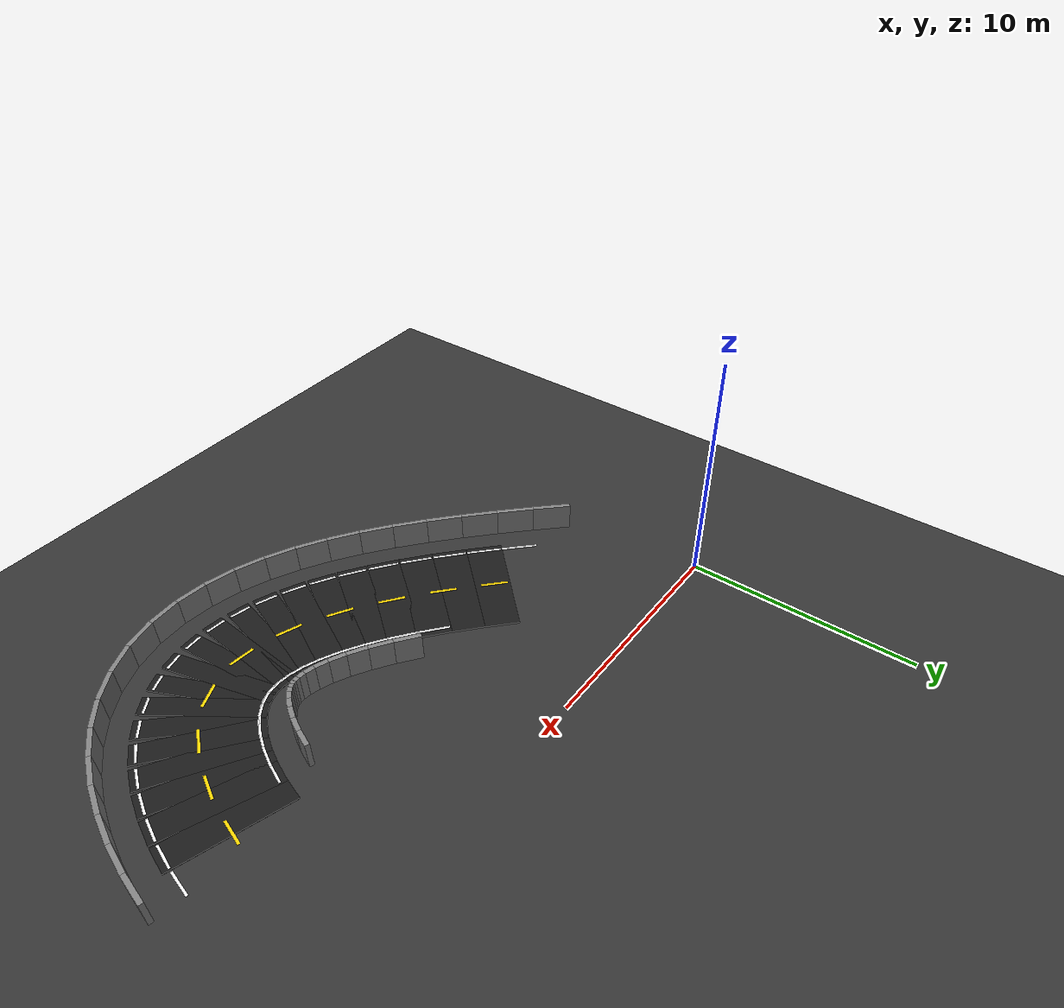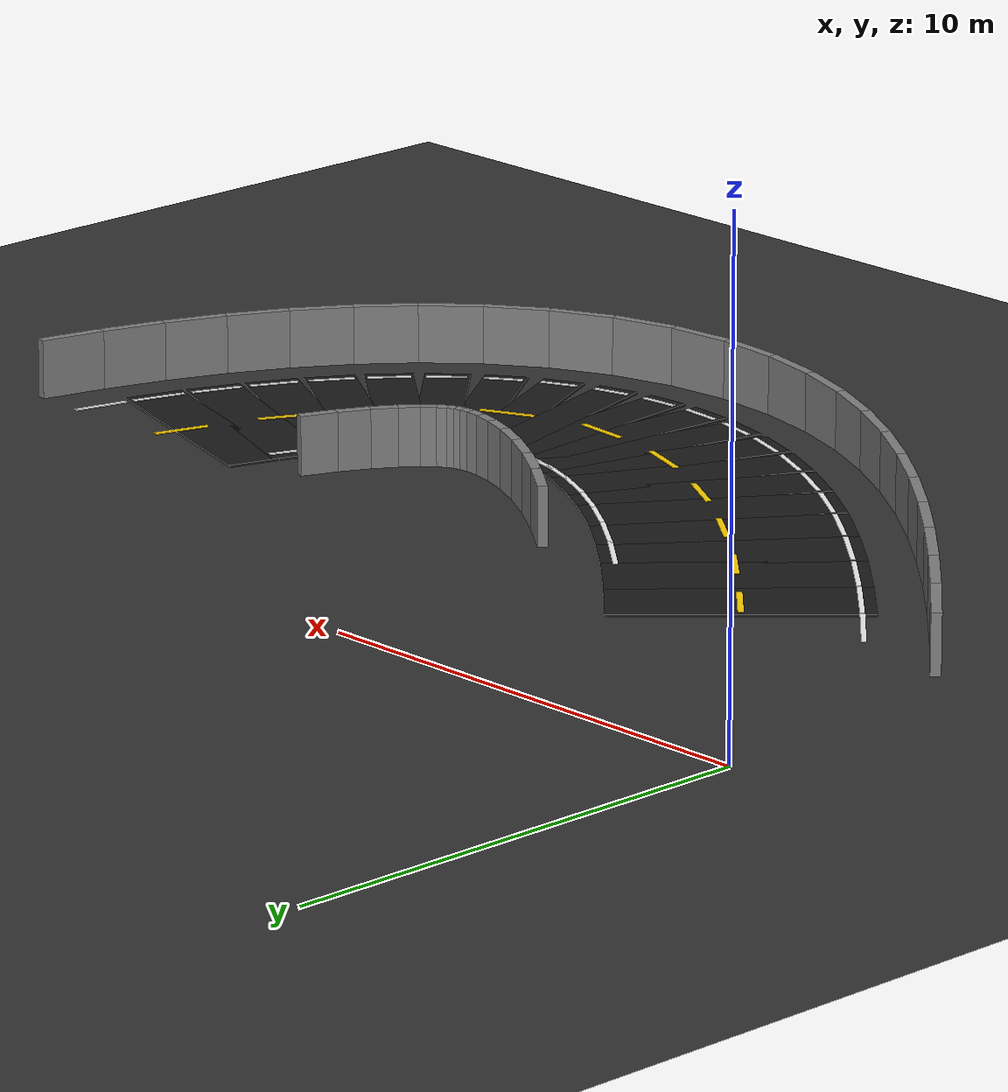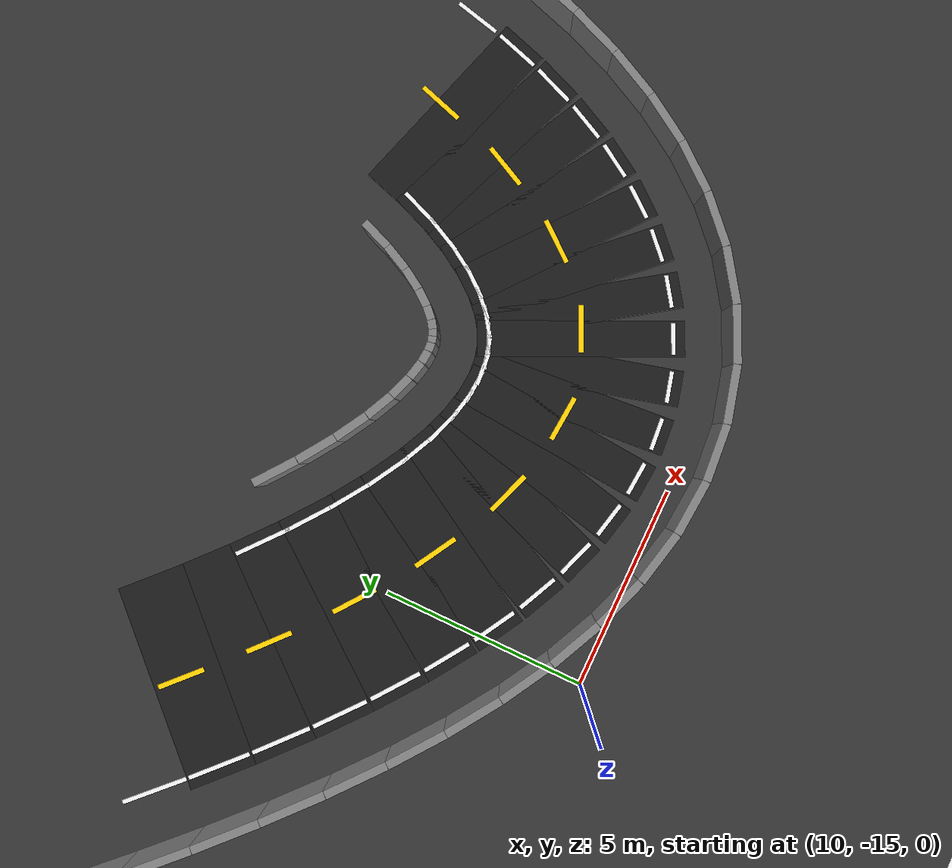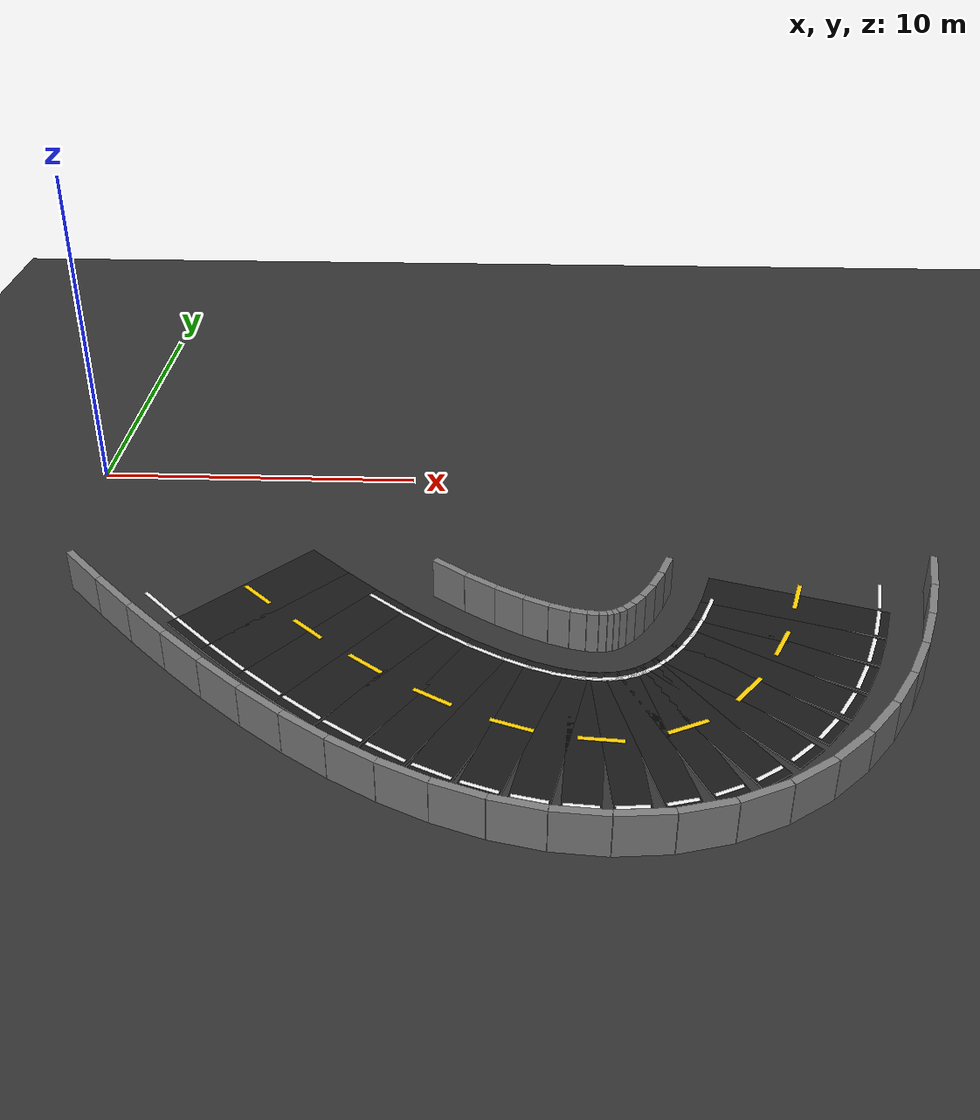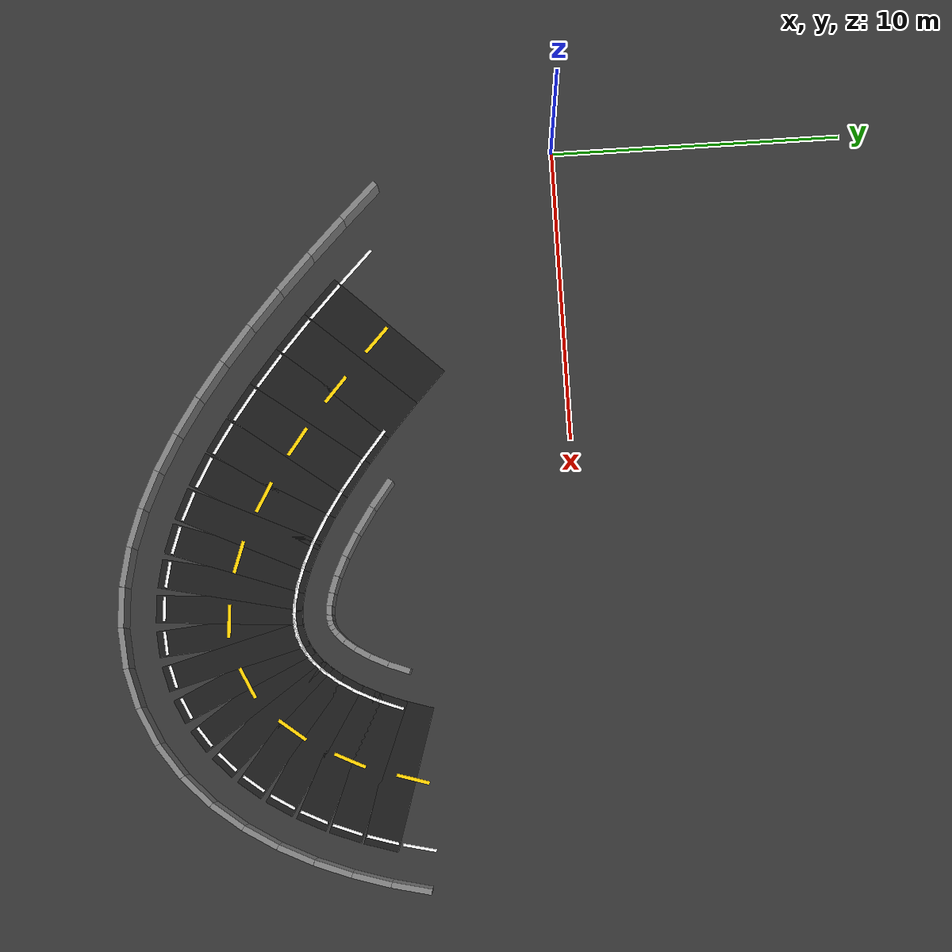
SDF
<sdf version="1.6">
 <world name="adas_figure8_circuit">
  <model name="ground">
   <static>true</static>
   <link name="link">
    <collision name="collision">
     <geometry><plane><normal>0 0 1</normal><size>80.0 80.0</size></plane></geometry>
    </collision>
    <visual name="visual">
     <geometry><plane><normal>0 0 1</normal><size>80.0 80.0</size></plane></geometry>
     <material><ambient>0.16 0.16 0.16 1</ambient><diffuse>0.20 0.20 0.20 1</diffuse></material>
    </visual>
   </link>
  </model>
  <model name="road_035">
   <static>true</static>
   <pose>21.0868 -6.5267 0.025 0 0 -1.871890</pose>
   <link name="link">
    <collision name="collision"><geometry><box><size>1.2030 5.000 0.05</size></box></geometry></collision>
    <visual name="visual">
     <geometry><box><size>1.2030 5.000 0.05</size></box></geometry>
     <material><ambient>0.07 0.07 0.07 1</ambient><diffuse>0.10 0.10 0.10 1</diffuse></material>
    </visual>
   </link>
  </model>
  <model name="road_036">
   <static>true</static>
   <pose>20.7310 -7.5415 0.025 0 0 -1.946007</pose>
   <link name="link">
    <collision name="collision"><geometry><box><size>1.1491 5.000 0.05</size></box></geometry></collision>
    <visual name="visual">
     <geometry><box><size>1.1491 5.000 0.05</size></box></geometry>
     <material><ambient>0.07 0.07 0.07 1</ambient><diffuse>0.10 0.10 0.10 1</diffuse></material>
    </visual>
   </link>
  </model>
  <model name="road_037">
   <static>true</static>
   <pose>20.3184 -8.4737 0.025 0 0 -2.031453</pose>
   <link name="link">
    <collision name="collision"><geometry><box><size>1.0915 5.000 0.05</size></box></geometry></collision>
    <visual name="visual">
     <geometry><box><size>1.0915 5.000 0.05</size></box></geometry>
     <material><ambient>0.07 0.07 0.07 1</ambient><diffuse>0.10 0.10 0.10 1</diffuse></material>
    </visual>
   </link>
  </model>
  <model name="road_038">
   <static>true</static>
   <pose>19.8501 -9.3130 0.025 0 0 -2.131045</pose>
   <link name="link">
    <collision name="collision"><geometry><box><size>1.0331 5.000 0.05</size></box></geometry></collision>
    <visual name="visual">
     <geometry><box><size>1.0331 5.000 0.05</size></box></geometry>
     <material><ambient>0.07 0.07 0.07 1</ambient><diffuse>0.10 0.10 0.10 1</diffuse></material>
    </visual>
   </link>
  </model>
  <model name="road_039">
   <static>true</static>
   <pose>19.3274 -10.0503 0.025 0 0 -2.247587</pose>
   <link name="link">
    <collision name="collision"><geometry><box><size>0.9775 5.000 0.05</size></box></geometry></collision>
    <visual name="visual">
     <geometry><box><size>0.9775 5.000 0.05</size></box></geometry>
     <material><ambient>0.07 0.07 0.07 1</ambient><diffuse>0.10 0.10 0.10 1</diffuse></material>
    </visual>
   </link>
  </model>
  <model name="road_040">
   <static>true</static>
   <pose>18.7517 -10.6774 0.025 0 0 -2.383120</pose>
   <link name="link">
    <collision name="collision"><geometry><box><size>0.9291 5.000 0.05</size></box></geometry></collision>
    <visual name="visual">
     <geometry><box><size>0.9291 5.000 0.05</size></box></geometry>
     <material><ambient>0.07 0.07 0.07 1</ambient><diffuse>0.10 0.10 0.10 1</diffuse></material>
    </visual>
   </link>
  </model>
  <model name="road_041">
   <static>true</static>
   <pose>18.1246 -11.1876 0.025 0 0 -2.537619</pose>
   <link name="link">
    <collision name="collision"><geometry><box><size>0.8926 5.000 0.05</size></box></geometry></collision>
    <visual name="visual">
     <geometry><box><size>0.8926 5.000 0.05</size></box></geometry>
     <material><ambient>0.07 0.07 0.07 1</ambient><diffuse>0.10 0.10 0.10 1</diffuse></material>
    </visual>
   </link>
  </model>
  <model name="road_042">
   <static>true</static>
   <pose>17.4478 -11.5752 0.025 0 0 -2.707447</pose>
   <link name="link">
    <collision name="collision"><geometry><box><size>0.8729 5.000 0.05</size></box></geometry></collision>
    <visual name="visual">
     <geometry><box><size>0.8729 5.000 0.05</size></box></geometry>
     <material><ambient>0.07 0.07 0.07 1</ambient><diffuse>0.10 0.10 0.10 1</diffuse></material>
    </visual>
   </link>
  </model>
  <model name="road_043">
   <static>true</static>
   <pose>16.7232 -11.8360 0.025 0 0 -2.884716</pose>
   <link name="link">
    <collision name="collision"><geometry><box><size>0.8734 5.000 0.05</size></box></geometry></collision>
    <visual name="visual">
     <geometry><box><size>0.8734 5.000 0.05</size></box></geometry>
     <material><ambient>0.07 0.07 0.07 1</ambient><diffuse>0.10 0.10 0.10 1</diffuse></material>
    </visual>
   </link>
  </model>
  <model name="road_044">
   <static>true</static>
   <pose>15.9528 -11.9671 0.025 0 0 -3.058868</pose>
   <link name="link">
    <collision name="collision"><geometry><box><size>0.8956 5.000 0.05</size></box></geometry></collision>
    <visual name="visual">
     <geometry><box><size>0.8956 5.000 0.05</size></box></geometry>
     <material><ambient>0.07 0.07 0.07 1</ambient><diffuse>0.10 0.10 0.10 1</diffuse></material>
    </visual>
   </link>
  </model>
  <model name="road_045">
   <static>true</static>
   <pose>15.1386 -11.9671 0.025 0 0 3.063072</pose>
   <link name="link">
    <collision name="collision"><geometry><box><size>0.9381 5.000 0.05</size></box></geometry></collision>
    <visual name="visual">
     <geometry><box><size>0.9381 5.000 0.05</size></box></geometry>
     <material><ambient>0.07 0.07 0.07 1</ambient><diffuse>0.10 0.10 0.10 1</diffuse></material>
    </visual>
   </link>
  </model>
  <model name="road_046">
   <static>true</static>
   <pose>14.2830 -11.8360 0.025 0 0 2.920897</pose>
   <link name="link">
    <collision name="collision"><geometry><box><size>0.9976 5.000 0.05</size></box></geometry></collision>
    <visual name="visual">
     <geometry><box><size>0.9976 5.000 0.05</size></box></geometry>
     <material><ambient>0.07 0.07 0.07 1</ambient><diffuse>0.10 0.10 0.10 1</diffuse></material>
    </visual>
   </link>
  </model>
  <model name="road_047">
   <static>true</static>
   <pose>13.3882 -11.5752 0.025 0 0 2.799787</pose>
   <link name="link">
    <collision name="collision"><geometry><box><size>1.0699 5.000 0.05</size></box></geometry></collision>
    <visual name="visual">
     <geometry><box><size>1.0699 5.000 0.05</size></box></geometry>
     <material><ambient>0.07 0.07 0.07 1</ambient><diffuse>0.10 0.10 0.10 1</diffuse></material>
    </visual>
   </link>
  </model>
  <model name="road_048">
   <static>true</static>
   <pose>12.4567 -11.1876 0.025 0 0 2.698785</pose>
   <link name="link">
    <collision name="collision"><geometry><box><size>1.1505 5.000 0.05</size></box></geometry></collision>
    <visual name="visual">
     <geometry><box><size>1.1505 5.000 0.05</size></box></geometry>
     <material><ambient>0.07 0.07 0.07 1</ambient><diffuse>0.10 0.10 0.10 1</diffuse></material>
    </visual>
   </link>
  </model>
  <model name="road_049">
   <static>true</static>
   <pose>11.4910 -10.6774 0.025 0 0 2.615516</pose>
   <link name="link">
    <collision name="collision"><geometry><box><size>1.2356 5.000 0.05</size></box></geometry></collision>
    <visual name="visual">
     <geometry><box><size>1.2356 5.000 0.05</size></box></geometry>
     <material><ambient>0.07 0.07 0.07 1</ambient><diffuse>0.10 0.10 0.10 1</diffuse></material>
    </visual>
   </link>
  </model>
  <model name="road_050">
   <static>true</static>
   <pose>10.4939 -10.0503 0.025 0 0 2.547260</pose>
   <link name="link">
    <collision name="collision"><geometry><box><size>1.3217 5.000 0.05</size></box></geometry></collision>
    <visual name="visual">
     <geometry><box><size>1.3217 5.000 0.05</size></box></geometry>
     <material><ambient>0.07 0.07 0.07 1</ambient><diffuse>0.10 0.10 0.10 1</diffuse></material>
    </visual>
   </link>
  </model>
  <model name="road_051">
   <static>true</static>
   <pose>9.4680 -9.3130 0.025 0 0 2.491490</pose>
   <link name="link">
    <collision name="collision"><geometry><box><size>1.4060 5.000 0.05</size></box></geometry></collision>
    <visual name="visual">
     <geometry><box><size>1.4060 5.000 0.05</size></box></geometry>
     <material><ambient>0.07 0.07 0.07 1</ambient><diffuse>0.10 0.10 0.10 1</diffuse></material>
    </visual>
   </link>
  </model>
  <model name="road_052">
   <static>true</static>
   <pose>8.4162 -8.4737 0.025 0 0 2.446072</pose>
   <link name="link">
    <collision name="collision"><geometry><box><size>1.4861 5.000 0.05</size></box></geometry></collision>
    <visual name="visual">
     <geometry><box><size>1.4861 5.000 0.05</size></box></geometry>
     <material><ambient>0.07 0.07 0.07 1</ambient><diffuse>0.10 0.10 0.10 1</diffuse></material>
    </visual>
   </link>
  </model>
  <model name="road_053">
   <static>true</static>
   <pose>7.3412 -7.5415 0.025 0 0 2.409289</pose>
   <link name="link">
    <collision name="collision"><geometry><box><size>1.5600 5.000 0.05</size></box></geometry></collision>
    <visual name="visual">
     <geometry><box><size>1.5600 5.000 0.05</size></box></geometry>
     <material><ambient>0.07 0.07 0.07 1</ambient><diffuse>0.10 0.10 0.10 1</diffuse></material>
    </visual>
   </link>
  </model>
  <model name="road_054">
   <static>true</static>
   <pose>6.2462 -6.5267 0.025 0 0 2.379794</pose>
   <link name="link">
    <collision name="collision"><geometry><box><size>1.6262 5.000 0.05</size></box></geometry></collision>
    <visual name="visual">
     <geometry><box><size>1.6262 5.000 0.05</size></box></geometry>
     <material><ambient>0.07 0.07 0.07 1</ambient><diffuse>0.10 0.10 0.10 1</diffuse></material>
    </visual>
   </link>
  </model>
  <model name="center_dash_018">
   <static>true</static>
   <pose>21.2339 -6.0532 0.058 0 0 -1.871890</pose>
   <link name="link">
    <visual name="visual">
     <geometry><box><size>1.150 0.12 0.02</size></box></geometry>
     <material><ambient>1 0.82 0 1</ambient><diffuse>1 0.82 0 1</diffuse></material>
    </visual>
   </link>
  </model>
  <model name="center_dash_019">
   <static>true</static>
   <pose>20.4816 -8.1448 0.058 0 0 -2.031453</pose>
   <link name="link">
    <visual name="visual">
     <geometry><box><size>1.150 0.12 0.02</size></box></geometry>
     <material><ambient>1 0.82 0 1</ambient><diffuse>1 0.82 0 1</diffuse></material>
    </visual>
   </link>
  </model>
  <model name="center_dash_020">
   <static>true</static>
   <pose>19.3334 -10.0427 0.058 0 0 -2.247587</pose>
   <link name="link">
    <visual name="visual">
     <geometry><box><size>1.150 0.12 0.02</size></box></geometry>
     <material><ambient>1 0.82 0 1</ambient><diffuse>1 0.82 0 1</diffuse></material>
    </visual>
   </link>
  </model>
  <model name="center_dash_021">
   <static>true</static>
   <pose>17.6577 -11.4779 0.058 0 0 -2.707447</pose>
   <link name="link">
    <visual name="visual">
     <geometry><box><size>1.150 0.12 0.02</size></box></geometry>
     <material><ambient>1 0.82 0 1</ambient><diffuse>1 0.82 0 1</diffuse></material>
    </visual>
   </link>
  </model>
  <model name="center_dash_022">
   <static>true</static>
   <pose>15.5181 -11.9970 0.058 0 0 3.063072</pose>
   <link name="link">
    <visual name="visual">
     <geometry><box><size>1.150 0.12 0.02</size></box></geometry>
     <material><ambient>1 0.82 0 1</ambient><diffuse>1 0.82 0 1</diffuse></material>
    </visual>
   </link>
  </model>
  <model name="center_dash_023">
   <static>true</static>
   <pose>13.3478 -11.5609 0.058 0 0 2.799787</pose>
   <link name="link">
    <visual name="visual">
     <geometry><box><size>1.150 0.12 0.02</size></box></geometry>
     <material><ambient>1 0.82 0 1</ambient><diffuse>1 0.82 0 1</diffuse></material>
    </visual>
   </link>
  </model>
  <model name="center_dash_024">
   <static>true</static>
   <pose>11.3486 -10.5947 0.058 0 0 2.615516</pose>
   <link name="link">
    <visual name="visual">
     <geometry><box><size>1.150 0.12 0.02</size></box></geometry>
     <material><ambient>1 0.82 0 1</ambient><diffuse>1 0.82 0 1</diffuse></material>
    </visual>
   </link>
  </model>
  <model name="center_dash_025">
   <static>true</static>
   <pose>9.5099 -9.3449 0.058 0 0 2.491490</pose>
   <link name="link">
    <visual name="visual">
     <geometry><box><size>1.150 0.12 0.02</size></box></geometry>
     <material><ambient>1 0.82 0 1</ambient><diffuse>1 0.82 0 1</diffuse></material>
    </visual>
   </link>
  </model>
  <model name="center_dash_026">
   <static>true</static>
   <pose>7.7849 -7.9404 0.058 0 0 2.409289</pose>
   <link name="link">
    <visual name="visual">
     <geometry><box><size>1.150 0.12 0.02</size></box></geometry>
     <material><ambient>1 0.82 0 1</ambient><diffuse>1 0.82 0 1</diffuse></material>
    </visual>
   </link>
  </model>
  <model name="center_dash_027">
   <static>true</static>
   <pose>6.1482 -6.4333 0.058 0 0 2.379794</pose>
   <link name="link">
    <visual name="visual">
     <geometry><box><size>1.150 0.12 0.02</size></box></geometry>
     <material><ambient>1 0.82 0 1</ambient><diffuse>1 0.82 0 1</diffuse></material>
    </visual>
   </link>
  </model>
  <model name="edge_left_034">
   <static>true</static>
   <pose>23.5434 -5.9590 0.058 0 0 -1.806578</pose>
   <link name="link">
    <visual name="visual">
     <geometry><box><size>1.1510 0.10 0.02</size></box></geometry>
     <material><ambient>0.95 0.95 0.95 1</ambient><diffuse>0.95 0.95 0.95 1</diffuse></material>
    </visual>
   </link>
  </model>
  <model name="edge_left_035">
   <static>true</static>
   <pose>23.2069 -7.1851 0.058 0 0 -1.871890</pose>
   <link name="link">
    <visual name="visual">
     <geometry><box><size>1.1030 0.10 0.02</size></box></geometry>
     <material><ambient>0.95 0.95 0.95 1</ambient><diffuse>0.95 0.95 0.95 1</diffuse></material>
    </visual>
   </link>
  </model>
  <model name="edge_left_036">
   <static>true</static>
   <pose>22.7966 -8.3551 0.058 0 0 -1.946007</pose>
   <link name="link">
    <visual name="visual">
     <geometry><box><size>1.0491 0.10 0.02</size></box></geometry>
     <material><ambient>0.95 0.95 0.95 1</ambient><diffuse>0.95 0.95 0.95 1</diffuse></material>
    </visual>
   </link>
  </model>
  <model name="edge_left_037">
   <static>true</static>
   <pose>22.3070 -9.4605 0.058 0 0 -2.031453</pose>
   <link name="link">
    <visual name="visual">
     <geometry><box><size>0.9915 0.10 0.02</size></box></geometry>
     <material><ambient>0.95 0.95 0.95 1</ambient><diffuse>0.95 0.95 0.95 1</diffuse></material>
    </visual>
   </link>
  </model>
  <model name="edge_left_038">
   <static>true</static>
   <pose>21.7307 -10.4927 0.058 0 0 -2.131045</pose>
   <link name="link">
    <visual name="visual">
     <geometry><box><size>0.9331 0.10 0.02</size></box></geometry>
     <material><ambient>0.95 0.95 0.95 1</ambient><diffuse>0.95 0.95 0.95 1</diffuse></material>
    </visual>
   </link>
  </model>
  <model name="edge_left_039">
   <static>true</static>
   <pose>21.0580 -11.4406 0.058 0 0 -2.247587</pose>
   <link name="link">
    <visual name="visual">
     <geometry><box><size>0.8775 0.10 0.02</size></box></geometry>
     <material><ambient>0.95 0.95 0.95 1</ambient><diffuse>0.95 0.95 0.95 1</diffuse></material>
    </visual>
   </link>
  </model>
  <model name="edge_left_040">
   <static>true</static>
   <pose>20.2786 -12.2889 0.058 0 0 -2.383120</pose>
   <link name="link">
    <visual name="visual">
     <geometry><box><size>0.8291 0.10 0.02</size></box></geometry>
     <material><ambient>0.95 0.95 0.95 1</ambient><diffuse>0.95 0.95 0.95 1</diffuse></material>
    </visual>
   </link>
  </model>
  <model name="edge_left_041">
   <static>true</static>
   <pose>19.3853 -13.0149 0.058 0 0 -2.537619</pose>
   <link name="link">
    <visual name="visual">
     <geometry><box><size>0.7926 0.10 0.02</size></box></geometry>
     <material><ambient>0.95 0.95 0.95 1</ambient><diffuse>0.95 0.95 0.95 1</diffuse></material>
    </visual>
   </link>
  </model>
  <model name="edge_left_042">
   <static>true</static>
   <pose>18.3816 -13.5893 0.058 0 0 -2.707447</pose>
   <link name="link">
    <visual name="visual">
     <geometry><box><size>0.7729 0.10 0.02</size></box></geometry>
     <material><ambient>0.95 0.95 0.95 1</ambient><diffuse>0.95 0.95 0.95 1</diffuse></material>
    </visual>
   </link>
  </model>
  <model name="edge_left_043">
   <static>true</static>
   <pose>17.2872 -13.9832 0.058 0 0 -2.884716</pose>
   <link name="link">
    <visual name="visual">
     <geometry><box><size>0.7734 0.10 0.02</size></box></geometry>
     <material><ambient>0.95 0.95 0.95 1</ambient><diffuse>0.95 0.95 0.95 1</diffuse></material>
    </visual>
   </link>
  </model>
  <model name="edge_left_044">
   <static>true</static>
   <pose>16.1362 -14.1795 0.058 0 0 -3.058868</pose>
   <link name="link">
    <visual name="visual">
     <geometry><box><size>0.7956 0.10 0.02</size></box></geometry>
     <material><ambient>0.95 0.95 0.95 1</ambient><diffuse>0.95 0.95 0.95 1</diffuse></material>
    </visual>
   </link>
  </model>
  <model name="edge_left_045">
   <static>true</static>
   <pose>14.9645 -14.1803 0.058 0 0 3.063072</pose>
   <link name="link">
    <visual name="visual">
     <geometry><box><size>0.8381 0.10 0.02</size></box></geometry>
     <material><ambient>0.95 0.95 0.95 1</ambient><diffuse>0.95 0.95 0.95 1</diffuse></material>
    </visual>
   </link>
  </model>
  <model name="edge_left_046">
   <static>true</static>
   <pose>13.7970 -14.0022 0.058 0 0 2.920897</pose>
   <link name="link">
    <visual name="visual">
     <geometry><box><size>0.8976 0.10 0.02</size></box></geometry>
     <material><ambient>0.95 0.95 0.95 1</ambient><diffuse>0.95 0.95 0.95 1</diffuse></material>
    </visual>
   </link>
  </model>
  <model name="edge_left_047">
   <static>true</static>
   <pose>12.6440 -13.6668 0.058 0 0 2.799787</pose>
   <link name="link">
    <visual name="visual">
     <geometry><box><size>0.9699 0.10 0.02</size></box></geometry>
     <material><ambient>0.95 0.95 0.95 1</ambient><diffuse>0.95 0.95 0.95 1</diffuse></material>
    </visual>
   </link>
  </model>
  <model name="edge_left_048">
   <static>true</static>
   <pose>11.5054 -13.1935 0.058 0 0 2.698785</pose>
   <link name="link">
    <visual name="visual">
     <geometry><box><size>1.0505 0.10 0.02</size></box></geometry>
     <material><ambient>0.95 0.95 0.95 1</ambient><diffuse>0.95 0.95 0.95 1</diffuse></material>
    </visual>
   </link>
  </model>
  <model name="edge_left_049">
   <static>true</static>
   <pose>10.3763 -12.5972 0.058 0 0 2.615516</pose>
   <link name="link">
    <visual name="visual">
     <geometry><box><size>1.1356 0.10 0.02</size></box></geometry>
     <material><ambient>0.95 0.95 0.95 1</ambient><diffuse>0.95 0.95 0.95 1</diffuse></material>
    </visual>
   </link>
  </model>
  <model name="edge_left_050">
   <static>true</static>
   <pose>9.2508 -11.8896 0.058 0 0 2.547260</pose>
   <link name="link">
    <visual name="visual">
     <geometry><box><size>1.2217 0.10 0.02</size></box></geometry>
     <material><ambient>0.95 0.95 0.95 1</ambient><diffuse>0.95 0.95 0.95 1</diffuse></material>
    </visual>
   </link>
  </model>
  <model name="edge_left_051">
   <static>true</static>
   <pose>8.1243 -11.0801 0.058 0 0 2.491490</pose>
   <link name="link">
    <visual name="visual">
     <geometry><box><size>1.3060 0.10 0.02</size></box></geometry>
     <material><ambient>0.95 0.95 0.95 1</ambient><diffuse>0.95 0.95 0.95 1</diffuse></material>
    </visual>
   </link>
  </model>
  <model name="edge_left_052">
   <static>true</static>
   <pose>6.9936 -10.1780 0.058 0 0 2.446072</pose>
   <link name="link">
    <visual name="visual">
     <geometry><box><size>1.3861 0.10 0.02</size></box></geometry>
     <material><ambient>0.95 0.95 0.95 1</ambient><diffuse>0.95 0.95 0.95 1</diffuse></material>
    </visual>
   </link>
  </model>
  <model name="edge_left_053">
   <static>true</static>
   <pose>5.8570 -9.1924 0.058 0 0 2.409289</pose>
   <link name="link">
    <visual name="visual">
     <geometry><box><size>1.4600 0.10 0.02</size></box></geometry>
     <material><ambient>0.95 0.95 0.95 1</ambient><diffuse>0.95 0.95 0.95 1</diffuse></material>
    </visual>
   </link>
  </model>
  <model name="edge_left_054">
   <static>true</static>
   <pose>4.7139 -8.1331 0.058 0 0 2.379794</pose>
   <link name="link">
    <visual name="visual">
     <geometry><box><size>1.5262 0.10 0.02</size></box></geometry>
     <material><ambient>0.95 0.95 0.95 1</ambient><diffuse>0.95 0.95 0.95 1</diffuse></material>
    </visual>
   </link>
  </model>
  <model name="edge_left_055">
   <static>true</static>
   <pose>3.5648 -7.0108 0.058 0 0 2.356552</pose>
   <link name="link">
    <visual name="visual">
     <geometry><box><size>1.5833 0.10 0.02</size></box></geometry>
     <material><ambient>0.95 0.95 0.95 1</ambient><diffuse>0.95 0.95 0.95 1</diffuse></material>
    </visual>
   </link>
  </model>
  <model name="edge_right_036">
   <static>true</static>
   <pose>18.6655 -6.7279 0.058 0 0 -1.946007</pose>
   <link name="link">
    <visual name="visual">
     <geometry><box><size>1.0491 0.10 0.02</size></box></geometry>
     <material><ambient>0.95 0.95 0.95 1</ambient><diffuse>0.95 0.95 0.95 1</diffuse></material>
    </visual>
   </link>
  </model>
  <model name="edge_right_037">
   <static>true</static>
   <pose>18.3298 -7.4868 0.058 0 0 -2.031453</pose>
   <link name="link">
    <visual name="visual">
     <geometry><box><size>0.9915 0.10 0.02</size></box></geometry>
     <material><ambient>0.95 0.95 0.95 1</ambient><diffuse>0.95 0.95 0.95 1</diffuse></material>
    </visual>
   </link>
  </model>
  <model name="edge_right_038">
   <static>true</static>
   <pose>17.9695 -8.1333 0.058 0 0 -2.131045</pose>
   <link name="link">
    <visual name="visual">
     <geometry><box><size>0.9331 0.10 0.02</size></box></geometry>
     <material><ambient>0.95 0.95 0.95 1</ambient><diffuse>0.95 0.95 0.95 1</diffuse></material>
    </visual>
   </link>
  </model>
  <model name="edge_right_039">
   <static>true</static>
   <pose>17.5967 -8.6599 0.058 0 0 -2.247587</pose>
   <link name="link">
    <visual name="visual">
     <geometry><box><size>0.8775 0.10 0.02</size></box></geometry>
     <material><ambient>0.95 0.95 0.95 1</ambient><diffuse>0.95 0.95 0.95 1</diffuse></material>
    </visual>
   </link>
  </model>
  <model name="edge_right_040">
   <static>true</static>
   <pose>17.2247 -9.0660 0.058 0 0 -2.383120</pose>
   <link name="link">
    <visual name="visual">
     <geometry><box><size>0.8291 0.10 0.02</size></box></geometry>
     <material><ambient>0.95 0.95 0.95 1</ambient><diffuse>0.95 0.95 0.95 1</diffuse></material>
    </visual>
   </link>
  </model>
  <model name="edge_right_041">
   <static>true</static>
   <pose>16.8638 -9.3604 0.058 0 0 -2.537619</pose>
   <link name="link">
    <visual name="visual">
     <geometry><box><size>0.7926 0.10 0.02</size></box></geometry>
     <material><ambient>0.95 0.95 0.95 1</ambient><diffuse>0.95 0.95 0.95 1</diffuse></material>
    </visual>
   </link>
  </model>
  <model name="edge_right_042">
   <static>true</static>
   <pose>16.5140 -9.5612 0.058 0 0 -2.707447</pose>
   <link name="link">
    <visual name="visual">
     <geometry><box><size>0.7729 0.10 0.02</size></box></geometry>
     <material><ambient>0.95 0.95 0.95 1</ambient><diffuse>0.95 0.95 0.95 1</diffuse></material>
    </visual>
   </link>
  </model>
  <model name="edge_right_043">
   <static>true</static>
   <pose>16.1592 -9.6889 0.058 0 0 -2.884716</pose>
   <link name="link">
    <visual name="visual">
     <geometry><box><size>0.7734 0.10 0.02</size></box></geometry>
     <material><ambient>0.95 0.95 0.95 1</ambient><diffuse>0.95 0.95 0.95 1</diffuse></material>
    </visual>
   </link>
  </model>
  <model name="edge_right_044">
   <static>true</static>
   <pose>15.7693 -9.7547 0.058 0 0 -3.058868</pose>
   <link name="link">
    <visual name="visual">
     <geometry><box><size>0.7956 0.10 0.02</size></box></geometry>
     <material><ambient>0.95 0.95 0.95 1</ambient><diffuse>0.95 0.95 0.95 1</diffuse></material>
    </visual>
   </link>
  </model>
  <model name="edge_right_045">
   <static>true</static>
   <pose>15.3127 -9.7540 0.058 0 0 3.063072</pose>
   <link name="link">
    <visual name="visual">
     <geometry><box><size>0.8381 0.10 0.02</size></box></geometry>
     <material><ambient>0.95 0.95 0.95 1</ambient><diffuse>0.95 0.95 0.95 1</diffuse></material>
    </visual>
   </link>
  </model>
  <model name="edge_right_046">
   <static>true</static>
   <pose>14.7689 -9.6699 0.058 0 0 2.920897</pose>
   <link name="link">
    <visual name="visual">
     <geometry><box><size>0.8976 0.10 0.02</size></box></geometry>
     <material><ambient>0.95 0.95 0.95 1</ambient><diffuse>0.95 0.95 0.95 1</diffuse></material>
    </visual>
   </link>
  </model>
  <model name="edge_right_047">
   <static>true</static>
   <pose>14.1323 -9.4836 0.058 0 0 2.799787</pose>
   <link name="link">
    <visual name="visual">
     <geometry><box><size>0.9699 0.10 0.02</size></box></geometry>
     <material><ambient>0.95 0.95 0.95 1</ambient><diffuse>0.95 0.95 0.95 1</diffuse></material>
    </visual>
   </link>
  </model>
  <model name="edge_right_048">
   <static>true</static>
   <pose>13.4079 -9.1817 0.058 0 0 2.698785</pose>
   <link name="link">
    <visual name="visual">
     <geometry><box><size>1.0505 0.10 0.02</size></box></geometry>
     <material><ambient>0.95 0.95 0.95 1</ambient><diffuse>0.95 0.95 0.95 1</diffuse></material>
    </visual>
   </link>
  </model>
  <model name="edge_right_049">
   <static>true</static>
   <pose>12.6058 -8.7576 0.058 0 0 2.615516</pose>
   <link name="link">
    <visual name="visual">
     <geometry><box><size>1.1356 0.10 0.02</size></box></geometry>
     <material><ambient>0.95 0.95 0.95 1</ambient><diffuse>0.95 0.95 0.95 1</diffuse></material>
    </visual>
   </link>
  </model>
  <model name="edge_right_050">
   <static>true</static>
   <pose>11.7370 -8.2109 0.058 0 0 2.547260</pose>
   <link name="link">
    <visual name="visual">
     <geometry><box><size>1.2217 0.10 0.02</size></box></geometry>
     <material><ambient>0.95 0.95 0.95 1</ambient><diffuse>0.95 0.95 0.95 1</diffuse></material>
    </visual>
   </link>
  </model>
  <model name="edge_right_051">
   <static>true</static>
   <pose>10.8117 -7.5458 0.058 0 0 2.491490</pose>
   <link name="link">
    <visual name="visual">
     <geometry><box><size>1.3060 0.10 0.02</size></box></geometry>
     <material><ambient>0.95 0.95 0.95 1</ambient><diffuse>0.95 0.95 0.95 1</diffuse></material>
    </visual>
   </link>
  </model>
  <model name="edge_right_052">
   <static>true</static>
   <pose>9.8387 -6.7693 0.058 0 0 2.446072</pose>
   <link name="link">
    <visual name="visual">
     <geometry><box><size>1.3861 0.10 0.02</size></box></geometry>
     <material><ambient>0.95 0.95 0.95 1</ambient><diffuse>0.95 0.95 0.95 1</diffuse></material>
    </visual>
   </link>
  </model>
  <model name="slam_barrier_left_034">
   <static>true</static>
   <pose>24.7857 -6.2602 0.6000
        0 0 -1.806697</pose>
   <link name="link">
    <collision name="collision">
     <geometry><box><size>1.3670
                0.2000
                1.2000</size></box></geometry>
    </collision>
    <visual name="visual">
     <geometry><box><size>1.3670
                0.2000
                1.2000</size></box></geometry>
     <material><ambient>0.4 0.4 0.4 1</ambient><diffuse>0.5 0.5 0.5 1</diffuse></material>
    </visual>
   </link>
  </model>
  <model name="slam_barrier_left_035">
   <static>true</static>
   <pose>24.4263 -7.5674 0.6000
        0 0 -1.872071</pose>
   <link name="link">
    <collision name="collision">
     <geometry><box><size>1.3459
                0.2000
                1.2000</size></box></geometry>
    </collision>
    <visual name="visual">
     <geometry><box><size>1.3459
                0.2000
                1.2000</size></box></geometry>
     <material><ambient>0.4 0.4 0.4 1</ambient><diffuse>0.5 0.5 0.5 1</diffuse></material>
    </visual>
   </link>
  </model>
  <model name="slam_barrier_left_036">
   <static>true</static>
   <pose>23.9833 -8.8273 0.6000
        0 0 -1.946279</pose>
   <link name="link">
    <collision name="collision">
     <geometry><box><size>1.3270
                0.2000
                1.2000</size></box></geometry>
    </collision>
    <visual name="visual">
     <geometry><box><size>1.3270
                0.2000
                1.2000</size></box></geometry>
     <material><ambient>0.4 0.4 0.4 1</ambient><diffuse>0.5 0.5 0.5 1</diffuse></material>
    </visual>
   </link>
  </model>
  <model name="slam_barrier_right_036">
   <static>true</static>
   <pose>17.4787 -6.2556 0.6000
        0 0 -1.945540</pose>
   <link name="link">
    <collision name="collision">
     <geometry><box><size>0.7712
                0.2000
                1.2000</size></box></geometry>
    </collision>
    <visual name="visual">
     <geometry><box><size>0.7712
                0.2000
                1.2000</size></box></geometry>
     <material><ambient>0.4 0.4 0.4 1</ambient><diffuse>0.5 0.5 0.5 1</diffuse></material>
    </visual>
   </link>
  </model>
  <model name="slam_barrier_left_037">
   <static>true</static>
   <pose>23.4477 -10.0330 0.6000
        0 0 -2.031853</pose>
   <link name="link">
    <collision name="collision">
     <geometry><box><size>1.3139
                0.2000
                1.2000</size></box></geometry>
    </collision>
    <visual name="visual">
     <geometry><box><size>1.3139
                0.2000
                1.2000</size></box></geometry>
     <material><ambient>0.4 0.4 0.4 1</ambient><diffuse>0.5 0.5 0.5 1</diffuse></material>
    </visual>
   </link>
  </model>
  <model name="slam_barrier_right_037">
   <static>true</static>
   <pose>17.1891 -6.9143 0.6000
        0 0 -2.030667</pose>
   <link name="link">
    <collision name="collision">
     <geometry><box><size>0.6692
                0.2000
                1.2000</size></box></geometry>
    </collision>
    <visual name="visual">
     <geometry><box><size>0.6692
                0.2000
                1.2000</size></box></geometry>
     <material><ambient>0.4 0.4 0.4 1</ambient><diffuse>0.5 0.5 0.5 1</diffuse></material>
    </visual>
   </link>
  </model>
  <model name="slam_barrier_left_038">
   <static>true</static>
   <pose>22.8070 -11.1760 0.6000
        0 0 -2.131612</pose>
   <link name="link">
    <collision name="collision">
     <geometry><box><size>1.3100
                0.2000
                1.2000</size></box></geometry>
    </collision>
    <visual name="visual">
     <geometry><box><size>1.3100
                0.2000
                1.2000</size></box></geometry>
     <material><ambient>0.4 0.4 0.4 1</ambient><diffuse>0.5 0.5 0.5 1</diffuse></material>
    </visual>
   </link>
  </model>
  <model name="slam_barrier_right_038">
   <static>true</static>
   <pose>16.8931 -7.4499 0.6000
        0 0 -2.129710</pose>
   <link name="link">
    <collision name="collision">
     <geometry><box><size>0.5563
                0.2000
                1.2000</size></box></geometry>
    </collision>
    <visual name="visual">
     <geometry><box><size>0.5563
                0.2000
                1.2000</size></box></geometry>
     <material><ambient>0.4 0.4 0.4 1</ambient><diffuse>0.5 0.5 0.5 1</diffuse></material>
    </visual>
   </link>
  </model>
  <model name="slam_barrier_left_039">
   <static>true</static>
   <pose>22.0456 -12.2440 0.6000
        0 0 -2.248330</pose>
   <link name="link">
    <collision name="collision">
     <geometry><box><size>1.3178
                0.2000
                1.2000</size></box></geometry>
    </collision>
    <visual name="visual">
     <geometry><box><size>1.3178
                0.2000
                1.2000</size></box></geometry>
     <material><ambient>0.4 0.4 0.4 1</ambient><diffuse>0.5 0.5 0.5 1</diffuse></material>
    </visual>
   </link>
  </model>
  <model name="slam_barrier_right_039">
   <static>true</static>
   <pose>16.6091 -7.8565 0.6000
        0 0 -2.245349</pose>
   <link name="link">
    <collision name="collision">
     <geometry><box><size>0.4373
                0.2000
                1.2000</size></box></geometry>
    </collision>
    <visual name="visual">
     <geometry><box><size>0.4373
                0.2000
                1.2000</size></box></geometry>
     <material><ambient>0.4 0.4 0.4 1</ambient><diffuse>0.5 0.5 0.5 1</diffuse></material>
    </visual>
   </link>
  </model>
  <model name="slam_barrier_left_040">
   <static>true</static>
   <pose>21.1470 -13.2167 0.6000
        0 0 -2.383967</pose>
   <link name="link">
    <collision name="collision">
     <geometry><box><size>1.3369
                0.2000
                1.2000</size></box></geometry>
    </collision>
    <visual name="visual">
     <geometry><box><size>1.3369
                0.2000
                1.2000</size></box></geometry>
     <material><ambient>0.4 0.4 0.4 1</ambient><diffuse>0.5 0.5 0.5 1</diffuse></material>
    </visual>
   </link>
  </model>
  <model name="slam_barrier_right_040">
   <static>true</static>
   <pose>16.3563 -8.1382 0.6000
        0 0 -2.379595</pose>
   <link name="link">
    <collision name="collision">
     <geometry><box><size>0.3213
                0.2000
                1.2000</size></box></geometry>
    </collision>
    <visual name="visual">
     <geometry><box><size>0.3213
                0.2000
                1.2000</size></box></geometry>
     <material><ambient>0.4 0.4 0.4 1</ambient><diffuse>0.5 0.5 0.5 1</diffuse></material>
    </visual>
   </link>
  </model>
  <model name="slam_barrier_left_041">
   <static>true</static>
   <pose>20.1005 -14.0624 0.6000
        0 0 -2.538369</pose>
   <link name="link">
    <collision name="collision">
     <geometry><box><size>1.3622
                0.2000
                1.2000</size></box></geometry>
    </collision>
    <visual name="visual">
     <geometry><box><size>1.3622
                0.2000
                1.2000</size></box></geometry>
     <material><ambient>0.4 0.4 0.4 1</ambient><diffuse>0.5 0.5 0.5 1</diffuse></material>
    </visual>
   </link>
  </model>
  <model name="slam_barrier_right_041">
   <static>true</static>
   <pose>16.1486 -8.3128 0.6000
        0 0 -2.533037</pose>
   <link name="link">
    <collision name="collision">
     <geometry><box><size>0.2230
                0.2000
                1.2000</size></box></geometry>
    </collision>
    <visual name="visual">
     <geometry><box><size>0.2230
                0.2000
                1.2000</size></box></geometry>
     <material><ambient>0.4 0.4 0.4 1</ambient><diffuse>0.5 0.5 0.5 1</diffuse></material>
    </visual>
   </link>
  </model>
  <model name="slam_barrier_left_042">
   <static>true</static>
   <pose>18.9118 -14.7396 0.6000
        0 0 -2.707811</pose>
   <link name="link">
    <collision name="collision">
     <geometry><box><size>1.3839
                0.2000
                1.2000</size></box></geometry>
    </collision>
    <visual name="visual">
     <geometry><box><size>1.3839
                0.2000
                1.2000</size></box></geometry>
     <material><ambient>0.4 0.4 0.4 1</ambient><diffuse>0.5 0.5 0.5 1</diffuse></material>
    </visual>
   </link>
  </model>
  <model name="slam_barrier_right_042">
   <static>true</static>
   <pose>15.9838 -8.4108 0.6000
        0 0 -2.704333</pose>
   <link name="link">
    <collision name="collision">
     <geometry><box><size>0.1618
                0.2000
                1.2000</size></box></geometry>
    </collision>
    <visual name="visual">
     <geometry><box><size>0.1618
                0.2000
                1.2000</size></box></geometry>
     <material><ambient>0.4 0.4 0.4 1</ambient><diffuse>0.5 0.5 0.5 1</diffuse></material>
    </visual>
   </link>
  </model>
  <model name="slam_barrier_left_043">
   <static>true</static>
   <pose>17.6105 -15.2075 0.6000
        0 0 -2.884502</pose>
   <link name="link">
    <collision name="collision">
     <geometry><box><size>1.3925
                0.2000
                1.2000</size></box></geometry>
    </collision>
    <visual name="visual">
     <geometry><box><size>1.3925
                0.2000
                1.2000</size></box></geometry>
     <material><ambient>0.4 0.4 0.4 1</ambient><diffuse>0.5 0.5 0.5 1</diffuse></material>
    </visual>
   </link>
  </model>
  <model name="slam_barrier_right_043">
   <static>true</static>
   <pose>15.8359 -8.4645 0.6000
        0 0 -2.886639</pose>
   <link name="link">
    <collision name="collision">
     <geometry><box><size>0.1543
                0.2000
                1.2000</size></box></geometry>
    </collision>
    <visual name="visual">
     <geometry><box><size>0.1543
                0.2000
                1.2000</size></box></geometry>
     <material><ambient>0.4 0.4 0.4 1</ambient><diffuse>0.5 0.5 0.5 1</diffuse></material>
    </visual>
   </link>
  </model>
  <model name="slam_barrier_left_044">
   <static>true</static>
   <pose>16.2468 -15.4423 0.6000
        0 0 -3.058156</pose>
   <link name="link">
    <collision name="collision">
     <geometry><box><size>1.3856
                0.2000
                1.2000</size></box></geometry>
    </collision>
    <visual name="visual">
     <geometry><box><size>1.3856
                0.2000
                1.2000</size></box></geometry>
     <material><ambient>0.4 0.4 0.4 1</ambient><diffuse>0.5 0.5 0.5 1</diffuse></material>
    </visual>
   </link>
  </model>
  <model name="slam_barrier_right_044">
   <static>true</static>
   <pose>15.6588 -8.4920 0.6000
        0 0 -3.063672</pose>
   <link name="link">
    <collision name="collision">
     <geometry><box><size>0.2055
                0.2000
                1.2000</size></box></geometry>
    </collision>
    <visual name="visual">
     <geometry><box><size>0.2055
                0.2000
                1.2000</size></box></geometry>
     <material><ambient>0.4 0.4 0.4 1</ambient><diffuse>0.5 0.5 0.5 1</diffuse></material>
    </visual>
   </link>
  </model>
  <model name="slam_barrier_left_045">
   <static>true</static>
   <pose>14.8732 -15.4469 0.6000
        0 0 3.064001</pose>
   <link name="link">
    <collision name="collision">
     <geometry><box><size>1.3704
                0.2000
                1.2000</size></box></geometry>
    </collision>
    <visual name="visual">
     <geometry><box><size>1.3704
                0.2000
                1.2000</size></box></geometry>
     <material><ambient>0.4 0.4 0.4 1</ambient><diffuse>0.5 0.5 0.5 1</diffuse></material>
    </visual>
   </link>
  </model>
  <model name="slam_barrier_right_045">
   <static>true</static>
   <pose>15.4040 -8.4874 0.6000
        0 0 3.058905</pose>
   <link name="link">
    <collision name="collision">
     <geometry><box><size>0.3057
                0.2000
                1.2000</size></box></geometry>
    </collision>
    <visual name="visual">
     <geometry><box><size>0.3057
                0.2000
                1.2000</size></box></geometry>
     <material><ambient>0.4 0.4 0.4 1</ambient><diffuse>0.5 0.5 0.5 1</diffuse></material>
    </visual>
   </link>
  </model>
  <model name="slam_barrier_left_046">
   <static>true</static>
   <pose>13.5273 -15.2457 0.6000
        0 0 2.921773</pose>
   <link name="link">
    <collision name="collision">
     <geometry><box><size>1.3582
                0.2000
                1.2000</size></box></geometry>
    </collision>
    <visual name="visual">
     <geometry><box><size>1.3582
                0.2000
                1.2000</size></box></geometry>
     <material><ambient>0.4 0.4 0.4 1</ambient><diffuse>0.5 0.5 0.5 1</diffuse></material>
    </visual>
   </link>
  </model>
  <model name="slam_barrier_right_046">
   <static>true</static>
   <pose>15.0387 -8.4263 0.6000
        0 0 2.918172</pose>
   <link name="link">
    <collision name="collision">
     <geometry><box><size>0.4369
                0.2000
                1.2000</size></box></geometry>
    </collision>
    <visual name="visual">
     <geometry><box><size>0.4369
                0.2000
                1.2000</size></box></geometry>
     <material><ambient>0.4 0.4 0.4 1</ambient><diffuse>0.5 0.5 0.5 1</diffuse></material>
    </visual>
   </link>
  </model>
  <model name="slam_barrier_left_047">
   <static>true</static>
   <pose>12.2248 -14.8705 0.6000
        0 0 2.800477</pose>
   <link name="link">
    <collision name="collision">
     <geometry><box><size>1.3576
                0.2000
                1.2000</size></box></geometry>
    </collision>
    <visual name="visual">
     <geometry><box><size>1.3576
                0.2000
                1.2000</size></box></geometry>
     <material><ambient>0.4 0.4 0.4 1</ambient><diffuse>0.5 0.5 0.5 1</diffuse></material>
    </visual>
   </link>
  </model>
  <model name="slam_barrier_right_047">
   <static>true</static>
   <pose>14.5516 -8.2799 0.6000
        0 0 2.798177</pose>
   <link name="link">
    <collision name="collision">
     <geometry><box><size>0.5821
                0.2000
                1.2000</size></box></geometry>
    </collision>
    <visual name="visual">
     <geometry><box><size>0.5821
                0.2000
                1.2000</size></box></geometry>
     <material><ambient>0.4 0.4 0.4 1</ambient><diffuse>0.5 0.5 0.5 1</diffuse></material>
    </visual>
   </link>
  </model>
  <model name="slam_barrier_left_048">
   <static>true</static>
   <pose>10.9652 -14.3498 0.6000
        0 0 2.699274</pose>
   <link name="link">
    <collision name="collision">
     <geometry><box><size>1.3718
                0.2000
                1.2000</size></box></geometry>
    </collision>
    <visual name="visual">
     <geometry><box><size>1.3718
                0.2000
                1.2000</size></box></geometry>
     <material><ambient>0.4 0.4 0.4 1</ambient><diffuse>0.5 0.5 0.5 1</diffuse></material>
    </visual>
   </link>
  </model>
  <model name="slam_barrier_right_048">
   <static>true</static>
   <pose>13.9482 -8.0254 0.6000
        0 0 2.697866</pose>
   <link name="link">
    <collision name="collision">
     <geometry><box><size>0.7293
                0.2000
                1.2000</size></box></geometry>
    </collision>
    <visual name="visual">
     <geometry><box><size>0.7293
                0.2000
                1.2000</size></box></geometry>
     <material><ambient>0.4 0.4 0.4 1</ambient><diffuse>0.5 0.5 0.5 1</diffuse></material>
    </visual>
   </link>
  </model>
  <model name="slam_barrier_left_049">
   <static>true</static>
   <pose>9.7400 -13.7050 0.6000
        0 0 2.615842</pose>
   <link name="link">
    <collision name="collision">
     <geometry><box><size>1.3996
                0.2000
                1.2000</size></box></geometry>
    </collision>
    <visual name="visual">
     <geometry><box><size>1.3996
                0.2000
                1.2000</size></box></geometry>
     <material><ambient>0.4 0.4 0.4 1</ambient><diffuse>0.5 0.5 0.5 1</diffuse></material>
    </visual>
   </link>
  </model>
  <model name="slam_barrier_right_049">
   <static>true</static>
   <pose>13.2421 -7.6498 0.6000
        0 0 2.614993</pose>
   <link name="link">
    <collision name="collision">
     <geometry><box><size>0.8716
                0.2000
                1.2000</size></box></geometry>
    </collision>
    <visual name="visual">
     <geometry><box><size>0.8716
                0.2000
                1.2000</size></box></geometry>
     <material><ambient>0.4 0.4 0.4 1</ambient><diffuse>0.5 0.5 0.5 1</diffuse></material>
    </visual>
   </link>
  </model>
  <model name="slam_barrier_left_050">
   <static>true</static>
   <pose>8.5390 -12.9514 0.6000
        0 0 2.547470</pose>
   <link name="link">
    <collision name="collision">
     <geometry><box><size>1.4377
                0.2000
                1.2000</size></box></geometry>
    </collision>
    <visual name="visual">
     <geometry><box><size>1.4377
                0.2000
                1.2000</size></box></geometry>
     <material><ambient>0.4 0.4 0.4 1</ambient><diffuse>0.5 0.5 0.5 1</diffuse></material>
    </visual>
   </link>
  </model>
  <model name="slam_barrier_right_050">
   <static>true</static>
   <pose>12.4488 -7.1491 0.6000
        0 0 2.546959</pose>
   <link name="link">
    <collision name="collision">
     <geometry><box><size>1.0057
                0.2000
                1.2000</size></box></geometry>
    </collision>
    <visual name="visual">
     <geometry><box><size>1.0057
                0.2000
                1.2000</size></box></geometry>
     <material><ambient>0.4 0.4 0.4 1</ambient><diffuse>0.5 0.5 0.5 1</diffuse></material>
    </visual>
   </link>
  </model>
  <model name="slam_barrier_left_051">
   <static>true</static>
   <pose>7.3534 -12.1005 0.6000
        0 0 2.491623</pose>
   <link name="link">
    <collision name="collision">
     <geometry><box><size>1.4822
                0.2000
                1.2000</size></box></geometry>
    </collision>
    <visual name="visual">
     <geometry><box><size>1.4822
                0.2000
                1.2000</size></box></geometry>
     <material><ambient>0.4 0.4 0.4 1</ambient><diffuse>0.5 0.5 0.5 1</diffuse></material>
    </visual>
   </link>
  </model>
  <model name="slam_barrier_right_051">
   <static>true</static>
   <pose>11.5826 -6.5254 0.6000
        0 0 2.491314</pose>
   <link name="link">
    <collision name="collision">
     <geometry><box><size>1.1297
                0.2000
                1.2000</size></box></geometry>
    </collision>
    <visual name="visual">
     <geometry><box><size>1.1297
                0.2000
                1.2000</size></box></geometry>
     <material><ambient>0.4 0.4 0.4 1</ambient><diffuse>0.5 0.5 0.5 1</diffuse></material>
    </visual>
   </link>
  </model>
  <model name="slam_barrier_left_052">
   <static>true</static>
   <pose>6.1763 -11.1621 0.6000
        0 0 2.446157</pose>
   <link name="link">
    <collision name="collision">
     <geometry><box><size>1.5293
                0.2000
                1.2000</size></box></geometry>
    </collision>
    <visual name="visual">
     <geometry><box><size>1.5293
                0.2000
                1.2000</size></box></geometry>
     <material><ambient>0.4 0.4 0.4 1</ambient><diffuse>0.5 0.5 0.5 1</diffuse></material>
    </visual>
   </link>
  </model>
  <model name="slam_barrier_left_053">
   <static>true</static>
   <pose>5.0034 -10.1456 0.6000
        0 0 2.409343</pose>
   <link name="link">
    <collision name="collision">
     <geometry><box><size>1.5755
                0.2000
                1.2000</size></box></geometry>
    </collision>
    <visual name="visual">
     <geometry><box><size>1.5755
                0.2000
                1.2000</size></box></geometry>
     <material><ambient>0.4 0.4 0.4 1</ambient><diffuse>0.5 0.5 0.5 1</diffuse></material>
    </visual>
   </link>
  </model>
  <model name="slam_barrier_left_054">
   <static>true</static>
   <pose>3.8322 -9.0605 0.6000
        0 0 2.379829</pose>
   <link name="link">
    <collision name="collision">
     <geometry><box><size>1.6181
                0.2000
                1.2000</size></box></geometry>
    </collision>
    <visual name="visual">
     <geometry><box><size>1.6181
                0.2000
                1.2000</size></box></geometry>
     <material><ambient>0.4 0.4 0.4 1</ambient><diffuse>0.5 0.5 0.5 1</diffuse></material>
    </visual>
   </link>
  </model>
  <model name="slam_barrier_left_055">
   <static>true</static>
   <pose>2.6614 -7.9173 0.6000
        0 0 2.356575</pose>
   <link name="link">
    <collision name="collision">
     <geometry><box><size>1.6548
                0.2000
                1.2000</size></box></geometry>
    </collision>
    <visual name="visual">
     <geometry><box><size>1.6548
                0.2000
                1.2000</size></box></geometry>
     <material><ambient>0.4 0.4 0.4 1</ambient><diffuse>0.5 0.5 0.5 1</diffuse></material>
    </visual>
   </link>
  </model>
  <model name="slam_barrier_left_056">
   <static>true</static>
   <pose>1.4914 -6.7270 0.6000
        0 0 2.338798</pose>
   <link name="link">
    <collision name="collision">
     <geometry><box><size>1.6836
                0.2000
                1.2000</size></box></geometry>
    </collision>
    <visual name="visual">
     <geometry><box><size>1.6836
                0.2000
                1.2000</size></box></geometry>
     <material><ambient>0.4 0.4 0.4 1</ambient><diffuse>0.5 0.5 0.5 1</diffuse></material>
    </visual>
   </link>
  </model>
 </world>
</sdf>
